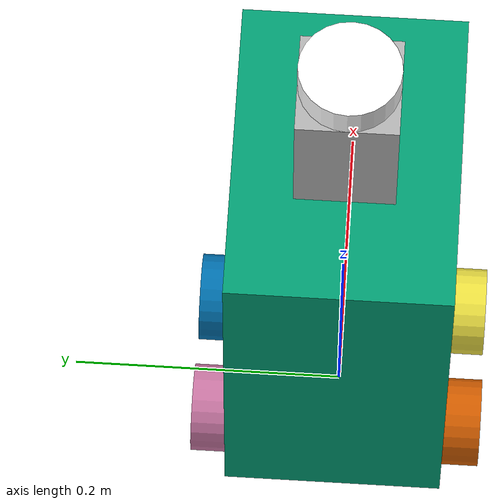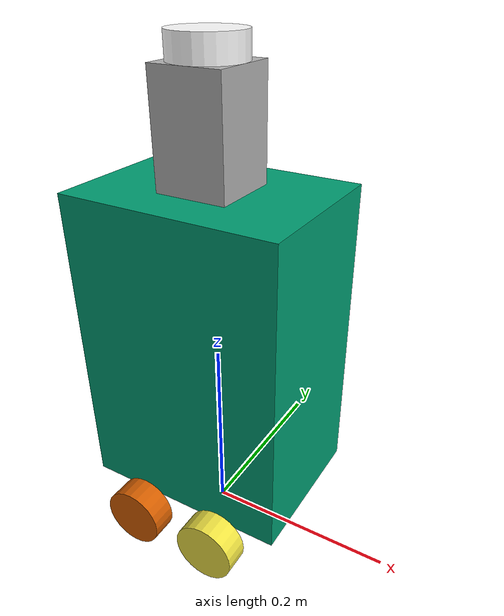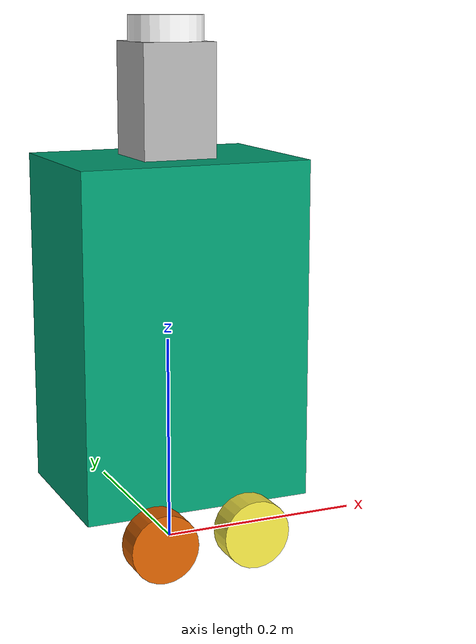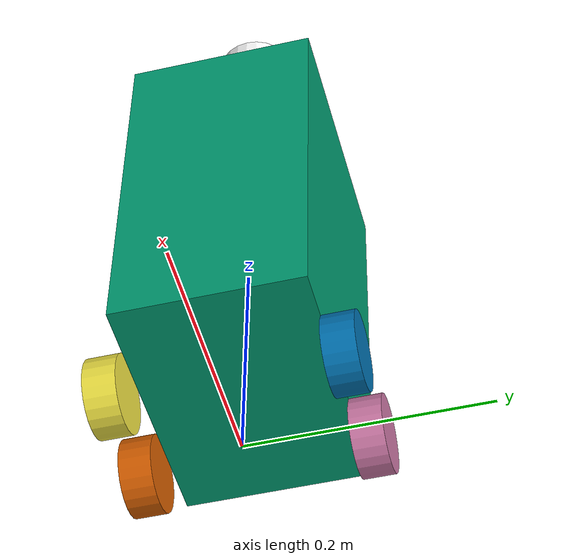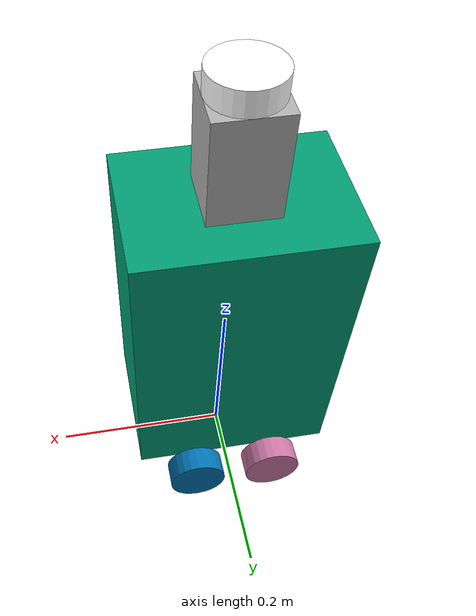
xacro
<?xml version="1.0"?>

<robot name="robot_4wd"
  xmlns:xacro="http://www.ros.org/wiki/xacro">

  <xacro:property name="base_width" value="0.16"/>
  <xacro:property name="base_len" value="0.16"/>
  <xacro:property name="wheel_radius" value="0.035"/>
  <xacro:property name="base_wheel_gap" value="0.007"/>
  <xacro:property name="wheel_separation" value="0.15"/>
  <xacro:property name="wheel_joint_offset" value="0.02"/>
  <xacro:property name="caster_wheel_radius" value="0.035"/>
  <xacro:property name="caster_wheel_joint_offset" value="0.035"/>

  <xacro:property name="rubber_wheel_diameter" value="0.065"/>
  <xacro:property name="rubber_wheel_width"    value="0.027"/>
  <xacro:property name="wheel_separation_front_back"   value="0.09142"/>
  <xacro:property name="wheel_separation_right_left"   value="0.161"/>
  <xacro:property name="case_width"   value="${wheel_separation_right_left- 0.002}"/>
  <xacro:property name="case_lenght"   value="0.22"/>
  <xacro:property name="case_height"   value="0.322"/>
  <xacro:property name="case_dist_base_to_wheel_axis"   value="0.022"/>

  <xacro:property name="base_sensor_laser_width"   value="0.071"/>
  <xacro:property name="base_sensor_laser_height"   value="0.106"/>

  <xacro:property name="sensor_laser_height"   value="0.024"/>
  <xacro:property name="sensor_laser_diameter"   value="0.071"/>

  <material name="white">
    <color rgba="${255/255} ${255/255} ${255/255} 1.0"/>
  </material>

<xacro:macro name="box_inertia" params="m w h d">
    <inertial>
      <mass value="${m}"/>
      <inertia ixx="${m / 12.0 * (d*d + h*h)}" ixy="0.0" ixz="0.0" iyy="${m / 12.0 * (w*w + h*h)}" iyz="0.0" izz="${m / 12.0 * (w*w + d*d)}"/>
    </inertial>
  </xacro:macro>

    <xacro:macro name="cylinder_inertia" params="m r h">
    <inertial>
      <mass value="${m}"/>
      <inertia ixx="${m*(3*r*r+h*h)/12}" ixy = "0" ixz = "0" iyy="${m*(3*r*r+h*h)/12}" iyz = "0" izz="${m*r*r/2}"/>
    </inertial>
  </xacro:macro>

<link name="dummy">
</link>

 <link name="base_footprint">
    <xacro:box_inertia m="20" w="0.001" h="0.001" d="0.001"/>
    <visual>
        <origin xyz="0 0 0" rpy="0 0 0" />
        <geometry>
            <box size="0.001 0.001 0.001" />
        </geometry>
    </visual>
  </link>

 <joint name="dummy_joint" type="fixed">
     <parent link="dummy"/>
     <child link="base_footprint"/>
   </joint>

 <link name="case">
    <xacro:box_inertia m="20" w="0.001" h="0.001" d="0.001"/>
    <visual>
        <origin xyz="0 0 0" rpy="0 0 0" />
        <geometry>
            <box size="${case_lenght} ${case_width} ${case_height}" />
        </geometry>
    </visual>
  </link>

<joint name="base_link_joint" type="fixed">
    <origin xyz="0 0 ${case_height / 2 +case_dist_base_to_wheel_axis + rubber_wheel_diameter/2}" rpy="0 0 0" />
    <parent link="base_footprint"/>
    <child link="case" />
  </joint>

 <!--

    ^ x      +====+
    I      xx+    +xx   Front right
    I      xx+    +xx
<== * z      +    +
y            +    +
          xxx+    +xx   Back right
          xxx+    +xx
             +====+
 -->
 <xacro:macro name="wheel" params="prefix reflectx reflecty">
    <link name="${prefix}_wheel">
      <visual>
        <origin xyz="0 0 0" rpy="${pi/2} 0 0"/>
        <geometry>
          <cylinder radius="${rubber_wheel_diameter /2}" length="${rubber_wheel_width}"/>
        </geometry>
      </visual>
      <collision>
        <origin xyz="0 0 0" rpy="${pi/2} 0 0"/>
        <geometry>
          <cylinder radius="${rubber_wheel_diameter / 2}" length="${rubber_wheel_width}"/>
        </geometry>
      </collision>
      <xacro:cylinder_inertia m="10" r="${wheel_radius}" h="0.005"/>
    </link>

    <joint name="${prefix}_wheel_joint" type="continuous">
      <axis xyz="0 1 0" rpy="0 0 0" />
      <parent link="case"/>
      <child link="${prefix}_wheel"/>
      <origin xyz="${wheel_separation_front_back/2 * reflectx} ${ (wheel_separation_right_left/2 + rubber_wheel_width/2) * reflecty } ${-case_height/2 -case_dist_base_to_wheel_axis }" rpy="0 0 0"/>
    </joint>
  </xacro:macro>

  <xacro:wheel prefix="front_left"  reflectx="1" reflecty="-1"/>
  <xacro:wheel prefix="front_right" reflectx="1" reflecty="1"/>
  <xacro:wheel prefix="back_left"  reflectx="-1" reflecty="-1"/>
  <xacro:wheel prefix="back_right" reflectx="-1" reflecty="1"/>

 <link name="base_sensor_laser">
    <xacro:box_inertia m="20" w="0.001" h="0.001" d="0.001"/>
    <visual>
        <origin xyz="0 0 0" rpy="0 0 0" />
        <geometry>
            <box size="${base_sensor_laser_width} ${base_sensor_laser_width} ${base_sensor_laser_height}" />
        </geometry>
    </visual>
  </link>

  <joint name="joint_base_sensor_laser" type="fixed">
    <origin xyz="0 0 ${case_height/2 + base_sensor_laser_height/2}" rpy="0 0 0"/>
    <parent link="case"/>
    <child link="base_sensor_laser"/>
  </joint>

  <link name="sensor_laser">
    <visual>
        <origin xyz="0 0 0" rpy="0 0 0" />
        <geometry>
        <cylinder radius="${sensor_laser_diameter /2}" length="${sensor_laser_height}"/>
        </geometry>
        <material name="white" />
    </visual>

    <collision>
        <origin xyz="0 0 0" rpy="0 0 0"/>
        <geometry>
        <cylinder radius="${sensor_laser_diameter /2}" length="${sensor_laser_height}"/>
        </geometry>
    </collision>
    <xacro:cylinder_inertia m="1" r="${sensor_laser_diameter/2}" h="${sensor_laser_height}" />
  </link>

  <joint name="joint_sensor_laser" type="fixed">
    <origin xyz="0 0 ${base_sensor_laser_height/2+sensor_laser_height/2}" rpy="0 0 0"/>
    <parent link="base_sensor_laser"/>
    <child link="sensor_laser"/>
  </joint>

</robot>
